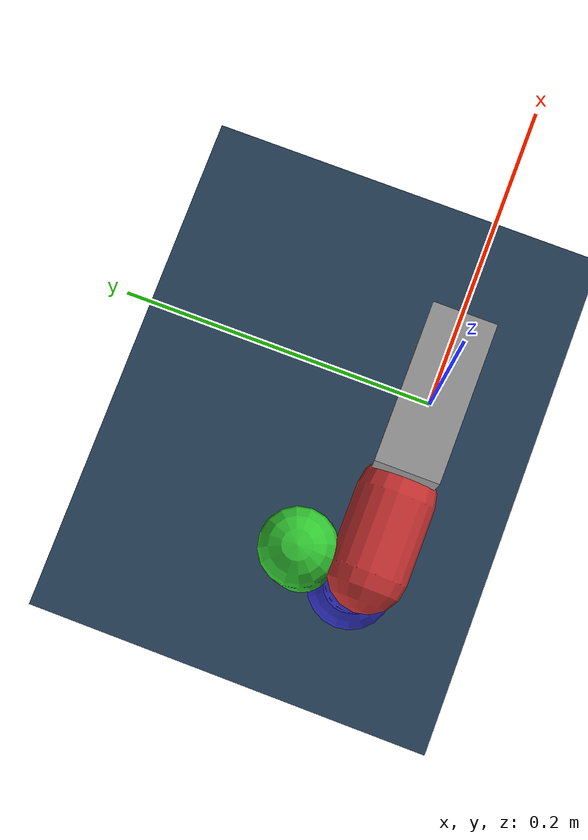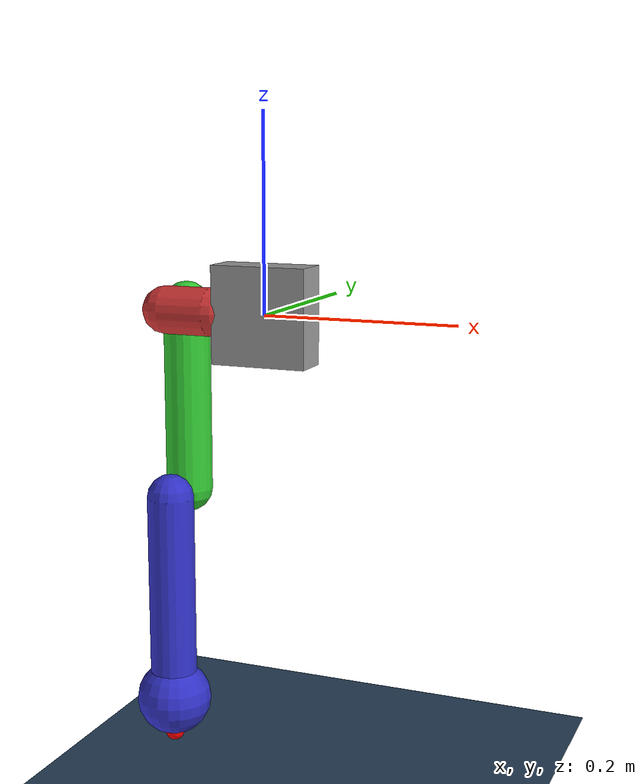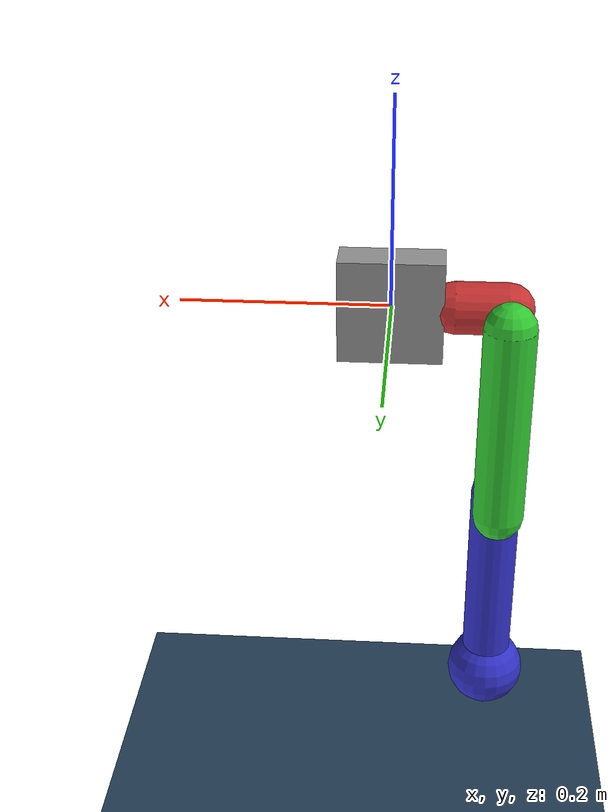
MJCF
<mujoco model="scene_with_3dof_leg">

  <compiler angle="radian" coordinate="local"/>
  <option gravity="0 0 -9.81" timestep="0.002"/>

  <asset>
    <texture name="grid" type="2d" builtin="checker"
             rgb1=".1 .2 .3" rgb2=".2 .3 .4"
             width="300" height="300"/>
    <material name="grid" texture="grid"
              texrepeat="1 1" texuniform="true"
              reflectance=".2"/>
  </asset>

  <worldbody>

    <light pos="0 0 1"/>
    <geom name="floor" type="plane"
          pos="0 0 -.5" size="2 2 .1"
          material="grid"
          friction="1.0 0.005 0.0001"/>

    <camera name="fixed" pos="0 -1.3 .5" xyaxes="1 0 0 0 1 2"/>

    <body name="leg_chassis" pos="0 0 0.0">
      <inertial pos="0 0 0" mass="0.5"
                diaginertia="0.002 0.002 0.002"/>

      <geom type="box" size="0.05 0.02 0.05"
            rgba="0.6 0.6 0.6 1"/>

      <body name="hip" pos="-0.06 0 0">

        <joint name="hip_joint"
               type="hinge"
               axis="0 0 1"
               range="-0.78 0.78"
               damping="0.2"/>

        <inertial pos="-0.025 0 0" mass="0.2"
                  diaginertia="0.0005 0.0005 0.0005"/>

        <geom type="capsule"
              fromto="0 0 0 -0.05 0 0"
              size="0.025"
              rgba="0.8 0.2 0.2 1"/>

        <body name="thigh" pos="-0.05 0.045 0">

          <joint name="knee_joint"
                 type="hinge"
                 axis="0 1 0"
                 range="0.0 3.14"
                 damping="0.2"/>

          <inertial pos="0 0 -0.125" mass="0.4"
                    diaginertia="0.003 0.003 0.001"/>

          <geom type="capsule"
                fromto="0 0 0 0 0 -0.20"
                size="0.025"
                rgba="0.2 0.8 0.2 1"/>

          <body name="ankle" pos="0 -0.045 -0.20">

            <joint name="ankle_joint"
                   type="hinge"
                   axis="0 1 0"
                   range="-2.1 2.1"
                   damping="0.2"/>

            <inertial pos="0 0 -0.10" mass="0.3"
                      diaginertia="0.002 0.002 0.0008"/>

            <geom type="capsule"
                  fromto="0 0 0 0 0 -0.20"
                  size="0.025"
                  rgba="0.2 0.2 0.8 1"/>

            <body name="foot" pos="0 0 -0.225">
              <inertial pos="0 0 0" mass="0.1"
                        diaginertia="0.0002 0.0002 0.0002"/>

              <geom type="sphere"
                    size="0.04"
                    friction="1.2 0.005 0.0001"
                    rgba="0.2 0.2 0.8 1"/>
              <site name="ee_site"
                    pos="0 0 -0.04"
                    size="0.01"
                    rgba="1 0 0 1"/>
            </body>

          </body>
        </body>
      </body>
    </body>

  </worldbody>

  <actuator>
    <motor name="hip_motor"   joint="hip_joint"   gear="15" ctrlrange="-1 1"/>
    <motor name="knee_motor"  joint="knee_joint"  gear="5" ctrlrange="-1 1"/>
    <motor name="ankle_motor" joint="ankle_joint" gear="5" ctrlrange="-1 1"/>
  </actuator>

</mujoco>
